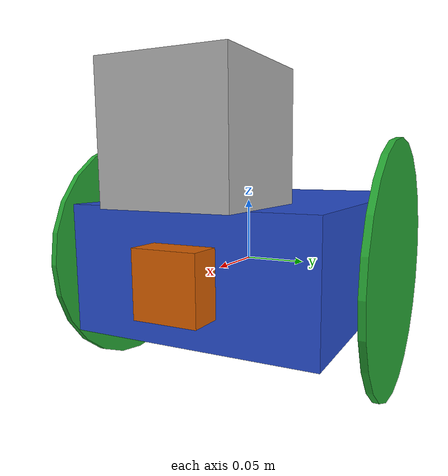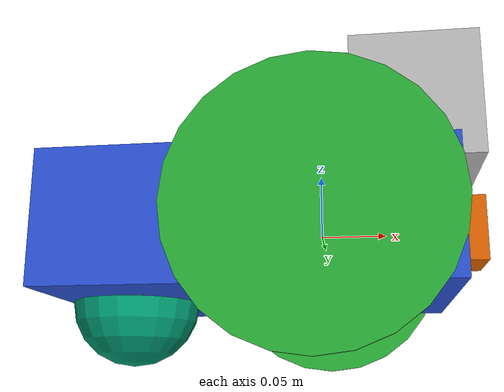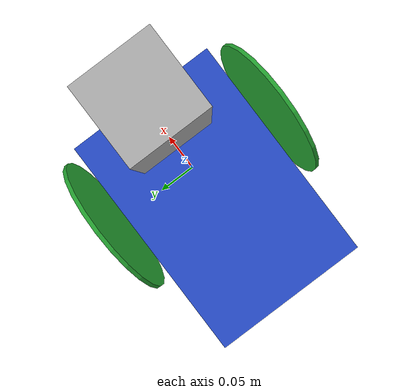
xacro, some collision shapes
<?xml version='1.0'?>

<robot name="my_bot" xmlns:xacro="http://www.ros.org/wiki/xacro">
  <xacro:include filename="$(find slam_project)/urdf/my_bot.gazebo" />

  <link name="robot_footprint"></link>

  <joint name="robot_footprint_joint" type="fixed">
    <origin xyz="0 0 0" rpy="0 0 0" />
    <parent link="robot_footprint"/>
    <child link="chassis" />
  </joint>

  <link name='chassis'>
    <pose>0 0 0.1 0 0 0</pose>

    <inertial>
      <mass value="15.0"/>
      <origin xyz="-0.05 0 0" rpy=" 0 0 0"/>
      <inertia
          ixx="0.1" ixy="0" ixz="0"
          iyy="0.1" iyz="0"
          izz="0.1"
      />
    </inertial>

    <collision name='collision'>
      <origin xyz="-0.05 0 0" rpy=" 0 0 0"/>
      <geometry>
        <box size=".3 .2 .1"/>
      </geometry>
    </collision>

    <visual name='chassis_visual'>
      <origin xyz="-0.05 0 0" rpy=" 0 0 0"/>
      <geometry>
        <box size=".3 .2 .1"/>
      </geometry>
    </visual>
  </link>

  <!-- back caster -->
  <link name='back_caster'>
    <inertial>
      <mass value="2.0"/>
      <origin xyz="0.0 0 0" rpy=" 0 0 0"/>
      <inertia
          ixx="1e-6" ixy="0" ixz="0"
          iyy="1e-6" iyz="0"
          izz="1e-6"
      />
    </inertial>
    <collision name='back_caster_collision'>
      <origin xyz="0 0 0" rpy=" 0 0 0"/>
      <geometry>
        <sphere radius="0.05"/>
      </geometry>
      <surface>
        <friction>
          <ode>
            <mu>0</mu>
            <mu2>0</mu2>
            <slip1>0</slip1>
            <slip2>0</slip2>
          </ode>
        </friction>
      </surface>
    </collision>

    <visual name='back_caster_visual'>
      <origin xyz="0 0 0" rpy=" 0 0 0"/>
      <geometry>
        <sphere radius="0.05"/>
      </geometry>
    </visual>
  </link>
  <joint type="fixed" name="back_caster_joint">
    <origin xyz="-0.15 0 -0.05" rpy="0 0 0"/>
    <child link="back_caster"/>
    <parent link="chassis"/>
    <axis xyz="1 0 0" rpy="0 0 0"/>
  </joint>
  <!-- left wheel -->
  <link name='left_wheel'>
    <inertial>
      <mass value="5.0"/>
      <origin xyz="0.0 0 0" rpy=" 0 1.5707 1.5707"/>
      <inertia
          ixx="0.1" ixy="0" ixz="0"
          iyy="0.1" iyz="0"
          izz="0.1"
      />
    </inertial>
    <collision name='left_wheel_collision'>
      <origin xyz="0.0 0 0" rpy=" 0 1.5707 1.5707"/>
      <geometry>
        <cylinder radius="0.1" length="0.005"/>
      </geometry>
    </collision>
    <visual name='left_wheel_visual'>
      <origin xyz="0.0 0 0" rpy=" 0 1.5707 1.5707"/>
      <geometry>
        <cylinder radius="0.1" length="0.005"/>
      </geometry>
    </visual>
  </link>
  <joint type="continuous" name="left_wheel_hinge">
    <origin xyz="0.0 0.125 0" rpy="0 0 0"/>
    <child link="left_wheel"/>
    <parent link="chassis"/>
    <axis xyz="0 1 0" rpy="0 0 0"/>
    <limit effort="10000" velocity="1000"/>
    <joint_properties damping="1.0" friction="1.0"/>
  </joint>
  <!-- right wheel -->
  <link name='right_wheel'>
    <inertial>
      <mass value="5.0"/>
      <origin xyz="0.0 0 0" rpy=" 0 1.5707 1.5707"/>
      <inertia
          ixx="0.1" ixy="0" ixz="0"
          iyy="0.1" iyz="0"
          izz="0.1"
      />
    </inertial>
    <collision name='right_wheel_collision'>
      <origin xyz="0.0 0 0" rpy=" 0 1.5707 1.5707"/>
      <geometry>
        <cylinder radius="0.1" length="0.005"/>
      </geometry>
    </collision>
    <visual name='right_wheel_visual'>
      <origin xyz="0.0 0 0" rpy=" 0 1.5707 1.5707"/>
      <geometry>
        <cylinder radius="0.1" length="0.005"/>
      </geometry>
    </visual>
  </link>
  <joint type="continuous" name="right_wheel_hinge">
    <origin xyz="0.0 -0.125 0" rpy="0 0 0"/>
    <child link="right_wheel"/>
    <parent link="chassis"/>
    <axis xyz="0 1 0" rpy="0 0 0"/>
    <limit effort="10000" velocity="1000"/>
    <joint_properties damping="1.0" friction="1.0"/>
  </joint>

  <!-- camera -->
  <link name='camera_link'>
    <inertial>
      <mass value="0.1"/>
      <origin xyz="0.0 0 0" rpy=" 0 0 0"/>
      <inertia
          ixx="1e-6" ixy="0" ixz="0"
          iyy="1e-6" iyz="0"
          izz="1e-6"
      />
    </inertial>
    <collision name='camera_collision'>
      <origin xyz="0.0 0 0" rpy=" 0 0 0"/>
      <geometry>
        <box size="0.05 0.05 0.05"/>
      </geometry>
    </collision>
    <visual name='camera_visual'>
      <origin xyz="0.0 0 0" rpy=" 0 0 0"/>
      <geometry>
        <box size="0.05 0.05 0.05"/>
      </geometry>
    </visual>
  </link>
  <joint type="fixed" name="camera_joint">
    <origin xyz="0.1 0 0" rpy="0 0 0"/>
    <child link="camera_link"/>
    <parent link="chassis"/>
  </joint>

  <link name='camera_rgbd_frame'></link>
  <joint type="fixed" name="camera_rgbd_joint">
    <origin xyz="0 0 0" rpy="0 0 0"/>
    <child link="camera_rgbd_frame"/>
    <parent link="camera_link"/>
  </joint>

  <!-- hokuyo laser rangefinder -->
  <link name='hokuyo'>
    <inertial>
      <mass value="0.1"/>
      <origin xyz="0.0 0 0" rpy=" 0 0 0"/>
      <inertia
          ixx="1e-6" ixy="0" ixz="0"
          iyy="1e-6" iyz="0"
          izz="1e-6"
      />
    </inertial>
    <collision name='hokuyo_collision'>
      <origin xyz="0.0 0 0" rpy=" 0 0 0"/>
      <geometry>
        <box size="0.1 0.1 0.1"/>
      </geometry>
    </collision>
    <visual name='hokuyo_visual'>
      <origin xyz="0.0 0 0" rpy=" 0 0 0"/>
      <geometry>
        <mesh filename="package://slam_project/meshes/hokuyo.dae"/>
      </geometry>
    </visual>
  </link>
  <joint type="fixed" name="hokuyo_joint">
    <origin xyz="0.075 0 0.1" rpy=" 0 0 0"/>
    <child link="hokuyo"/>
    <parent link="chassis"/>
  </joint>
</robot>
